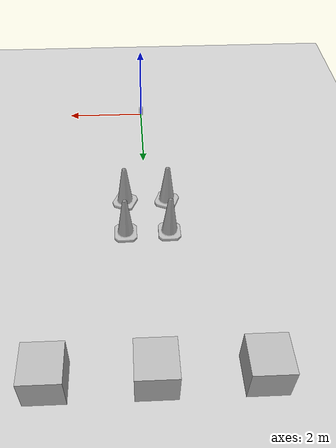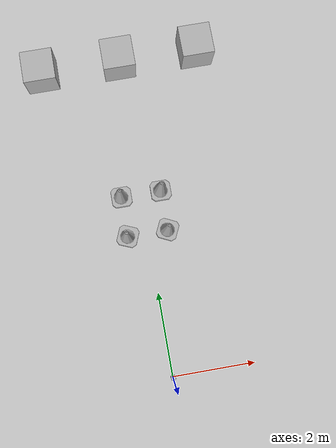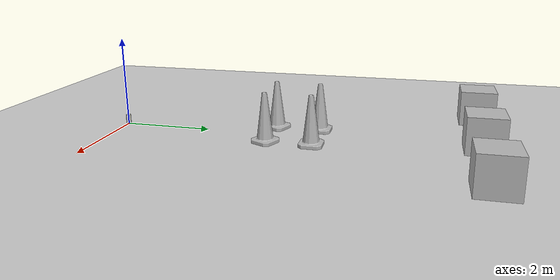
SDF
<sdf version="1.6">
 <world name="default">
  <light name="sun" type="directional">
   <pose>0 0 10 0 -0 0</pose>
   <diffuse>0.8 0.8 0.8 1</diffuse>
   <specular>0.2 0.2 0.2 1</specular>
   <attenuation>
    <range>1000</range>
    <constant>0.9</constant>
    <linear>0.01</linear>
    <quadratic>0.001</quadratic>
   </attenuation>
   <direction>-0.5 0.1 -0.9</direction>
  </light>
  <model name="ground_plane">
   <static>1</static>
   <link name="link">
    <collision name="collision">
     <geometry><plane><normal>0 0 1</normal><size>100 100</size></plane></geometry>
     <surface>
      <contact><collide_bitmask>65535</collide_bitmask></contact>
      <friction><ode><mu>100</mu><mu2>50</mu2></ode></friction>
     </surface>
    </collision>
    <visual name="visual">
     <cast_shadows>0</cast_shadows>
     <geometry><plane><normal>0 0 1</normal><size>100 100</size></plane></geometry>
     <material>
      <script><uri>file://media/materials/scripts/gazebo.material</uri><name>Gazebo/Grey</name></script>
     </material>
    </visual>
   </link>
  </model>
  <gravity>0 0 -9.8</gravity>
  <magnetic_field>6e-06 2.3e-05 -4.2e-05</magnetic_field>
  <atmosphere type="adiabatic"/>
  <physics name="default_physics" default="0" type="ode">
   <max_step_size>0.001</max_step_size>
   <real_time_factor>1</real_time_factor>
   <real_time_update_rate>1000</real_time_update_rate>
  </physics>
  <scene><ambient>0.4 0.4 0.4 1</ambient><background>0.7 0.7 0.7 1</background><shadows>1</shadows></scene>
  <audio><device>default</device></audio>
  <spherical_coordinates>
   <surface_model>EARTH_WGS84</surface_model>
   <latitude_deg>0</latitude_deg>
   <longitude_deg>0</longitude_deg>
   <elevation>0</elevation>
   <heading_deg>0</heading_deg>
  </spherical_coordinates>
  <model name="number1">
   <pose>2 8 0.4 0 -0 0</pose>
   <static>1</static>
   <link name="link">
    <visual name="visual">
     <geometry><mesh><uri>model://number1/meshes/number.dae</uri></mesh></geometry>
     <material>
      <script>
       <uri>model://number1/materials/scripts</uri>
       <uri>model://number1/materials/textures</uri>
       <name>Number/One</name>
      </script>
     </material>
    </visual>
   </link>
  </model>
  <model name="number3">
   <pose>-2 8 0.4 0 -0 0</pose>
   <static>1</static>
   <link name="link">
    <visual name="visual">
     <geometry><mesh><uri>model://number1/meshes/number.dae</uri></mesh></geometry>
     <material>
      <script>
       <uri>model://number3/materials/scripts</uri>
       <uri>model://number3/materials/textures</uri>
       <name>Number/Three</name>
      </script>
     </material>
    </visual>
   </link>
  </model>
  <model name="beer">
   <link name="link">
    <pose>0 0 0.115 0 -0 0</pose>
    <inertial>
     <mass>0.39</mass>
     <inertia><ixx>0.00058</ixx><ixy>0</ixy><ixz>0</ixz><iyy>0.00058</iyy><iyz>0</iyz><izz>0.00019</izz></inertia>
    </inertial>
    <collision name="collision">
     <geometry><cylinder><radius>0.055</radius><length>0.23</length></cylinder></geometry>
    </collision>
    <visual name="visual">
     <geometry><cylinder><radius>0.055</radius><length>0.23</length></cylinder></geometry>
     <material>
      <script>
       <uri>model://beer/materials/scripts</uri>
       <uri>model://beer/materials/textures</uri>
       <name>Beer/Diffuse</name>
      </script>
     </material>
    </visual>
   </link>
   <pose>-1e-06 -2e-06 -7e-06 -1e-06 -0 -3.6e-05</pose>
  </model>
  <model name="number2">
   <pose>0 8 0.4 0 -0 0</pose>
   <static>1</static>
   <link name="link">
    <visual name="visual">
     <geometry><mesh><uri>model://number1/meshes/number.dae</uri></mesh></geometry>
     <material>
      <script>
       <uri>model://number2/materials/scripts</uri>
       <uri>model://number2/materials/textures</uri>
       <name>Number/Two</name>
      </script>
     </material>
    </visual>
   </link>
  </model>
  <model name="Construction Cone">
   <link name="link">
    <collision name="collision">
     <geometry>
      <mesh><scale>10 10 10</scale><uri>model://construction_cone/meshes/construction_cone.dae</uri></mesh>
     </geometry>
    </collision>
    <visual name="visual">
     <geometry>
      <mesh><scale>10 10 10</scale><uri>model://construction_cone/meshes/construction_cone.dae</uri></mesh>
     </geometry>
    </visual>
    <inertial>
     <inertia><ixx>1</ixx><ixy>0</ixy><ixz>0</ixz><iyy>1</iyy><iyz>0</iyz><izz>1</izz></inertia>
     <mass>1</mass>
    </inertial>
   </link>
   <pose>0.5 4.5 0 -0 -0 -0</pose>
  </model>
  <model name="Construction Cone_clone">
   <link name="link">
    <collision name="collision">
     <geometry>
      <mesh><scale>10 10 10</scale><uri>model://construction_cone/meshes/construction_cone.dae</uri></mesh>
     </geometry>
    </collision>
    <visual name="visual">
     <geometry>
      <mesh><scale>10 10 10</scale><uri>model://construction_cone/meshes/construction_cone.dae</uri></mesh>
     </geometry>
    </visual>
    <inertial>
     <inertia><ixx>1</ixx><ixy>0</ixy><ixz>0</ixz><iyy>1</iyy><iyz>0</iyz><izz>1</izz></inertia>
     <mass>1</mass>
    </inertial>
   </link>
   <pose>-0.5 4.5 -0 0 -0 0</pose>
  </model>
  <model name="Construction Cone_clone_0">
   <link name="link">
    <collision name="collision">
     <geometry>
      <mesh><scale>10 10 10</scale><uri>model://construction_cone/meshes/construction_cone.dae</uri></mesh>
     </geometry>
    </collision>
    <visual name="visual">
     <geometry>
      <mesh><scale>10 10 10</scale><uri>model://construction_cone/meshes/construction_cone.dae</uri></mesh>
     </geometry>
    </visual>
    <inertial>
     <inertia><ixx>1</ixx><ixy>0</ixy><ixz>0</ixz><iyy>1</iyy><iyz>0</iyz><izz>1</izz></inertia>
     <mass>1</mass>
    </inertial>
   </link>
   <pose>0.5 3.5 -0 0 -1e-06 -0.443633</pose>
  </model>
  <model name="Construction Cone_clone_1">
   <link name="link">
    <collision name="collision">
     <geometry>
      <mesh><scale>10 10 10</scale><uri>model://construction_cone/meshes/construction_cone.dae</uri></mesh>
     </geometry>
    </collision>
    <visual name="visual">
     <geometry>
      <mesh><scale>10 10 10</scale><uri>model://construction_cone/meshes/construction_cone.dae</uri></mesh>
     </geometry>
    </visual>
    <inertial>
     <inertia><ixx>1</ixx><ixy>0</ixy><ixz>0</ixz><iyy>1</iyy><iyz>0</iyz><izz>1</izz></inertia>
     <mass>1</mass>
    </inertial>
   </link>
   <pose>-0.502991 3.49974 -8e-06 1e-06 -0 -0.393901</pose>
  </model>
 </world>
</sdf>
